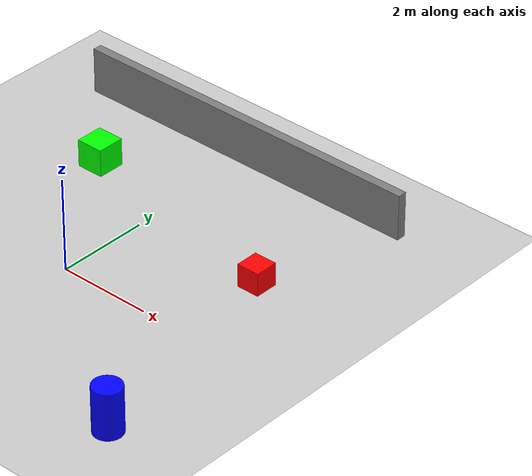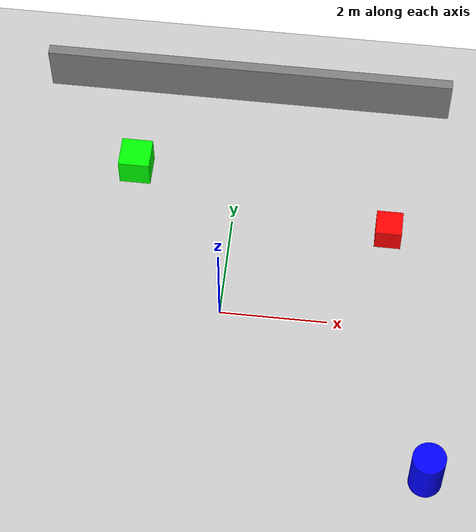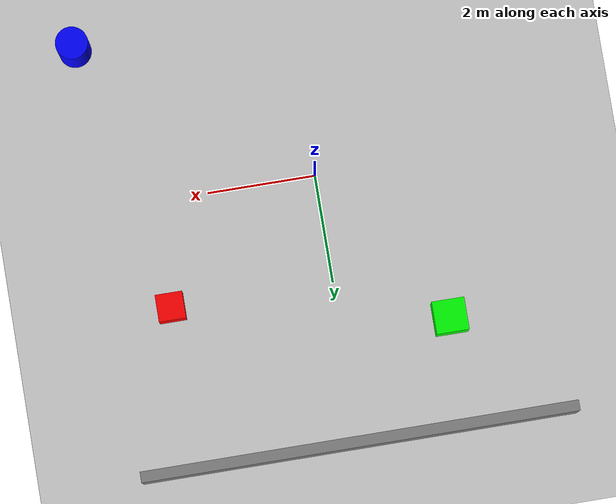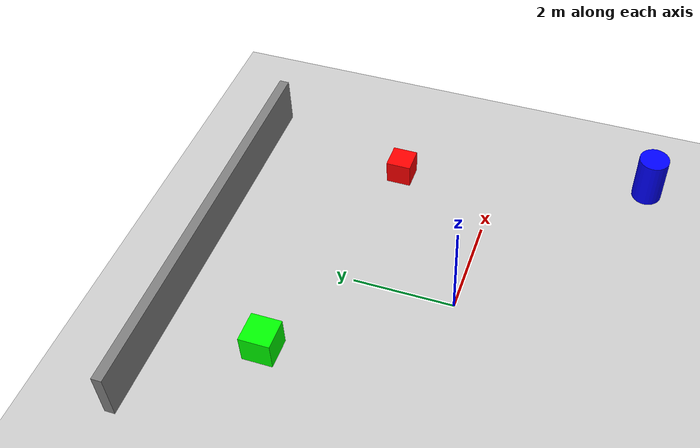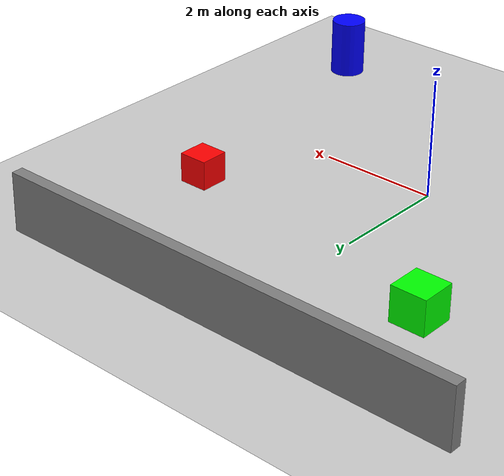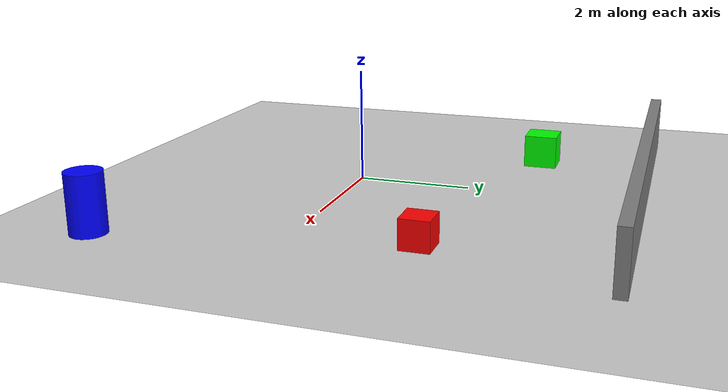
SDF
<?xml version="1.0" ?>
<sdf version="1.8">
  <world name="leo_world">

    <!-- Physics -->
    <physics name="1ms" type="ignored">
      <max_step_size>0.001</max_step_size>
      <real_time_factor>1.0</real_time_factor>
    </physics>

    <plugin filename="gz-sim-physics-system" name="gz::sim::systems::Physics"></plugin>
    <plugin filename="gz-sim-user-commands-system" name="gz::sim::systems::UserCommands"></plugin>
    <plugin filename="gz-sim-scene-broadcaster-system" name="gz::sim::systems::SceneBroadcaster"></plugin>
    <plugin filename="gz-sim-sensors-system" name="gz::sim::systems::Sensors">
      <render_engine>ogre2</render_engine>
    </plugin>

    <!-- Light -->
    <light type="directional" name="sun">
      <cast_shadows>true</cast_shadows>
      <pose>0 0 10 0 0 0</pose>
      <diffuse>0.8 0.8 0.8 1</diffuse>
      <specular>0.2 0.2 0.2 1</specular>
      <direction>-0.5 0.1 -0.9</direction>
    </light>

    <!-- Ground plane -->
    <model name="ground_plane">
      <static>true</static>
      <link name="link">
        <collision name="collision">
          <geometry>
            <plane>
              <normal>0 0 1</normal>
              <size>100 100</size>
            </plane>
          </geometry>
        </collision>
        <visual name="visual">
          <geometry>
            <plane>
              <normal>0 0 1</normal>
              <size>100 100</size>
            </plane>
          </geometry>
          <material>
            <ambient>0.8 0.8 0.8 1</ambient>
            <diffuse>0.8 0.8 0.8 1</diffuse>
          </material>
        </visual>
      </link>
    </model>

    <!-- Obstacles -->
    <model name="box_1">
      <pose>3 2 0.25 0 0 0</pose>
      <static>true</static>
      <link name="link">
        <collision name="collision">
          <geometry>
            <box><size>0.5 0.5 0.5</size></box>
          </geometry>
        </collision>
        <visual name="visual">
          <geometry>
            <box><size>0.5 0.5 0.5</size></box>
          </geometry>
          <material>
            <ambient>1 0 0 1</ambient>
            <diffuse>1 0 0 1</diffuse>
          </material>
        </visual>
      </link>
    </model>

    <model name="box_2">
      <pose>-2 3 0.3 0 0 0</pose>
      <static>true</static>
      <link name="link">
        <collision name="collision">
          <geometry>
            <box><size>0.6 0.6 0.6</size></box>
          </geometry>
        </collision>
        <visual name="visual">
          <geometry>
            <box><size>0.6 0.6 0.6</size></box>
          </geometry>
          <material>
            <ambient>0 1 0 1</ambient>
            <diffuse>0 1 0 1</diffuse>
          </material>
        </visual>
      </link>
    </model>

    <model name="cylinder_1">
      <pose>4 -3 0.5 0 0 0</pose>
      <static>true</static>
      <link name="link">
        <collision name="collision">
          <geometry>
            <cylinder><radius>0.3</radius><length>1.0</length></cylinder>
          </geometry>
        </collision>
        <visual name="visual">
          <geometry>
            <cylinder><radius>0.3</radius><length>1.0</length></cylinder>
          </geometry>
          <material>
            <ambient>0 0 1 1</ambient>
            <diffuse>0 0 1 1</diffuse>
          </material>
        </visual>
      </link>
    </model>

    <model name="wall">
      <pose>0 5 0.5 0 0 0</pose>
      <static>true</static>
      <link name="link">
        <collision name="collision">
          <geometry>
            <box><size>8 0.2 1.0</size></box>
          </geometry>
        </collision>
        <visual name="visual">
          <geometry>
            <box><size>8 0.2 1.0</size></box>
          </geometry>
          <material>
            <ambient>0.5 0.5 0.5 1</ambient>
            <diffuse>0.5 0.5 0.5 1</diffuse>
          </material>
        </visual>
      </link>
    </model>

  </world>
</sdf>
